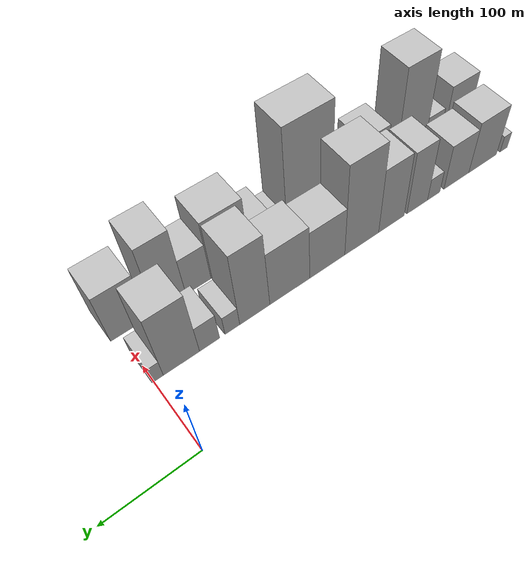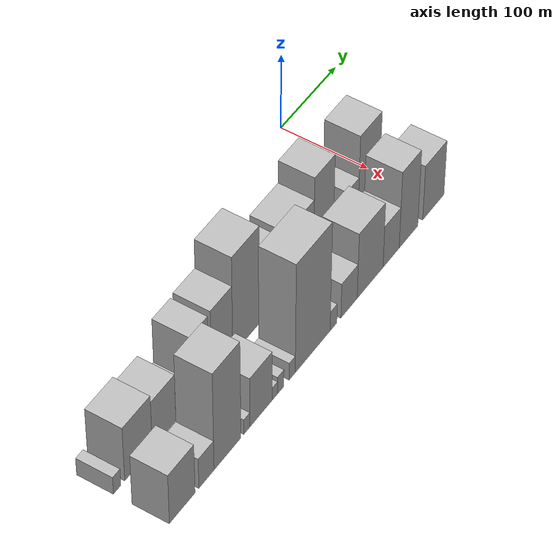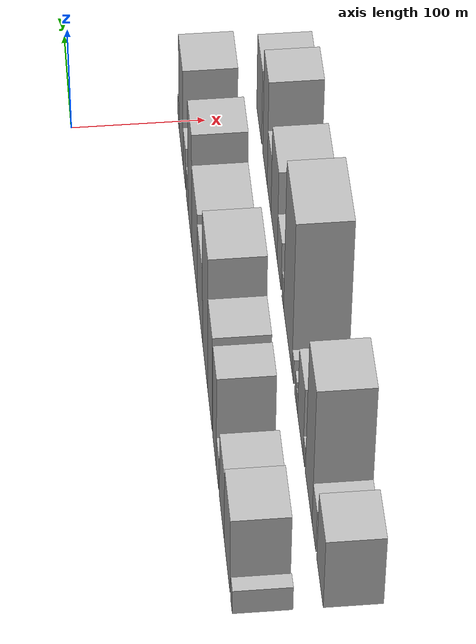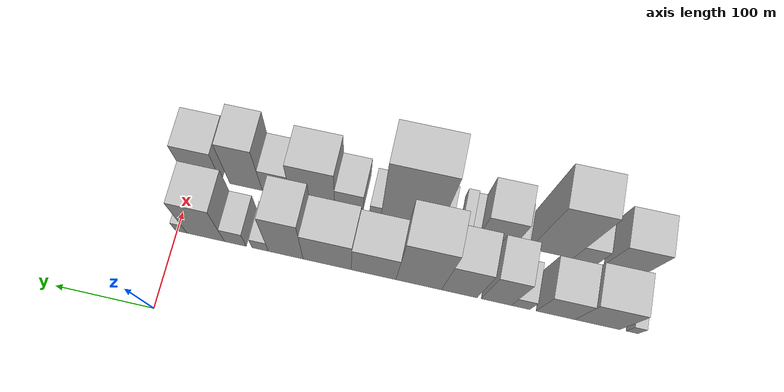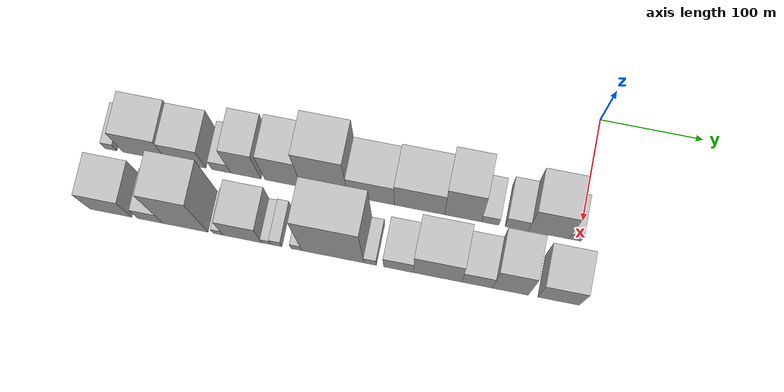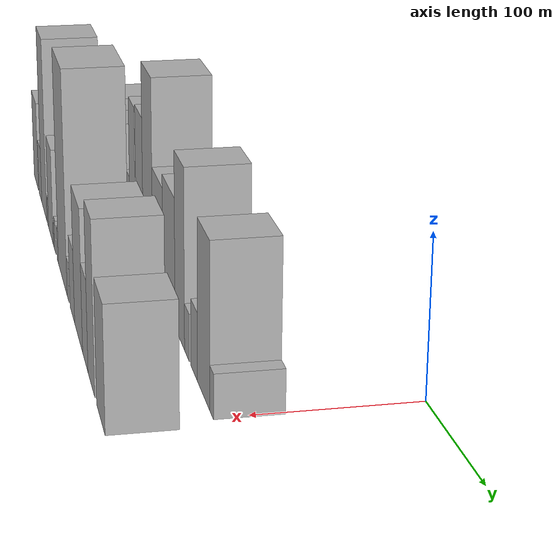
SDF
<sdf version="1.6">
 <world name="default">
  <model name="building_1">
   <static>1</static>
   <pose>100.0000 -454.2006 0 0.000000 0.000000 0.000000</pose>
   <link name="link">
    <pose>0 0 12.00 0 0 0</pose>
    <collision name="collision"><geometry><box><size>40.0000 11.5988 24.0000</size></box></geometry></collision>
    <visual name="visual">
     <cast_shadows>0</cast_shadows>
     <geometry><box><size>40.0000 11.5988 24.0000</size></box></geometry>
     <material>
      <script>
       <uri>model://HANNAS_wall/materials/scripts</uri>
       <uri>model://HANNAS_wall/materials/textures</uri>
       <name>vrc/HANNAS_wall</name>
      </script>
     </material>
    </visual>
   </link>
  </model>
  <model name="building_2">
   <static>1</static>
   <pose>100.0000 -420.6430 0 0.000000 0.000000 0.000000</pose>
   <link name="link">
    <pose>0 0 37.50 0 0 0</pose>
    <collision name="collision"><geometry><box><size>40.0000 43.5163 75.0000</size></box></geometry></collision>
    <visual name="visual">
     <cast_shadows>0</cast_shadows>
     <geometry><box><size>40.0000 43.5163 75.0000</size></box></geometry>
     <material>
      <script>
       <uri>model://HANNAS_wall/materials/scripts</uri>
       <uri>model://HANNAS_wall/materials/textures</uri>
       <name>vrc/HANNAS_wall</name>
      </script>
     </material>
    </visual>
   </link>
  </model>
  <model name="building_3">
   <static>1</static>
   <pose>100.0000 -380.0215 0 0.000000 0.000000 0.000000</pose>
   <link name="link">
    <pose>0 0 33.00 0 0 0</pose>
    <collision name="collision"><geometry><box><size>40.0000 37.7266 66.0000</size></box></geometry></collision>
    <visual name="visual">
     <cast_shadows>0</cast_shadows>
     <geometry><box><size>40.0000 37.7266 66.0000</size></box></geometry>
     <material>
      <script>
       <uri>model://HANNAS_wall/materials/scripts</uri>
       <uri>model://HANNAS_wall/materials/textures</uri>
       <name>vrc/HANNAS_wall</name>
      </script>
     </material>
    </visual>
   </link>
  </model>
  <model name="building_4">
   <static>1</static>
   <pose>100.0000 -346.0598 0 0.000000 0.000000 0.000000</pose>
   <link name="link">
    <pose>0 0 16.50 0 0 0</pose>
    <collision name="collision"><geometry><box><size>40.0000 18.1968 33.0000</size></box></geometry></collision>
    <visual name="visual">
     <cast_shadows>0</cast_shadows>
     <geometry><box><size>40.0000 18.1968 33.0000</size></box></geometry>
     <material>
      <script>
       <uri>model://HANNAS_wall/materials/scripts</uri>
       <uri>model://HANNAS_wall/materials/textures</uri>
       <name>vrc/HANNAS_wall</name>
      </script>
     </material>
    </visual>
   </link>
  </model>
  <model name="building_5">
   <static>1</static>
   <pose>100.0000 -322.1338 0 0.000000 0.000000 0.000000</pose>
   <link name="link">
    <pose>0 0 46.50 0 0 0</pose>
    <collision name="collision"><geometry><box><size>40.0000 29.6552 93.0000</size></box></geometry></collision>
    <visual name="visual">
     <cast_shadows>0</cast_shadows>
     <geometry><box><size>40.0000 29.6552 93.0000</size></box></geometry>
     <material>
      <script>
       <uri>model://HANNAS_wall/materials/scripts</uri>
       <uri>model://HANNAS_wall/materials/textures</uri>
       <name>vrc/HANNAS_wall</name>
      </script>
     </material>
    </visual>
   </link>
  </model>
  <model name="building_6">
   <static>1</static>
   <pose>100.0000 -285.5968 0 0.000000 0.000000 0.000000</pose>
   <link name="link">
    <pose>0 0 48.00 0 0 0</pose>
    <collision name="collision"><geometry><box><size>40.0000 35.4189 96.0000</size></box></geometry></collision>
    <visual name="visual">
     <cast_shadows>0</cast_shadows>
     <geometry><box><size>40.0000 35.4189 96.0000</size></box></geometry>
     <material>
      <script>
       <uri>model://HANNAS_wall/materials/scripts</uri>
       <uri>model://HANNAS_wall/materials/textures</uri>
       <name>vrc/HANNAS_wall</name>
      </script>
     </material>
    </visual>
   </link>
  </model>
  <model name="building_7">
   <static>1</static>
   <pose>100.0000 -245.2105 0 0.000000 0.000000 0.000000</pose>
   <link name="link">
    <pose>0 0 67.50 0 0 0</pose>
    <collision name="collision"><geometry><box><size>40.0000 45.3537 135.0000</size></box></geometry></collision>
    <visual name="visual">
     <cast_shadows>0</cast_shadows>
     <geometry><box><size>40.0000 45.3537 135.0000</size></box></geometry>
     <material>
      <script>
       <uri>model://HANNAS_wall/materials/scripts</uri>
       <uri>model://HANNAS_wall/materials/textures</uri>
       <name>vrc/HANNAS_wall</name>
      </script>
     </material>
    </visual>
   </link>
  </model>
  <model name="building_8">
   <static>1</static>
   <pose>100.0000 -200.1541 0 0.000000 0.000000 0.000000</pose>
   <link name="link">
    <pose>0 0 37.50 0 0 0</pose>
    <collision name="collision"><geometry><box><size>40.0000 44.7592 75.0000</size></box></geometry></collision>
    <visual name="visual">
     <cast_shadows>0</cast_shadows>
     <geometry><box><size>40.0000 44.7592 75.0000</size></box></geometry>
     <material>
      <script>
       <uri>model://HANNAS_wall/materials/scripts</uri>
       <uri>model://HANNAS_wall/materials/textures</uri>
       <name>vrc/HANNAS_wall</name>
      </script>
     </material>
    </visual>
   </link>
  </model>
  <model name="building_9">
   <static>1</static>
   <pose>100.0000 -153.4599 0 0.000000 0.000000 0.000000</pose>
   <link name="link">
    <pose>0 0 42.00 0 0 0</pose>
    <collision name="collision"><geometry><box><size>40.0000 48.6293 84.0000</size></box></geometry></collision>
    <visual name="visual">
     <cast_shadows>0</cast_shadows>
     <geometry><box><size>40.0000 48.6293 84.0000</size></box></geometry>
     <material>
      <script>
       <uri>model://HANNAS_wall/materials/scripts</uri>
       <uri>model://HANNAS_wall/materials/textures</uri>
       <name>vrc/HANNAS_wall</name>
      </script>
     </material>
    </visual>
   </link>
  </model>
  <model name="building_10">
   <static>1</static>
   <pose>100.0000 -111.5275 0 0.000000 0.000000 0.000000</pose>
   <link name="link">
    <pose>0 0 57.00 0 0 0</pose>
    <collision name="collision"><geometry><box><size>40.0000 35.2354 114.0000</size></box></geometry></collision>
    <visual name="visual">
     <cast_shadows>0</cast_shadows>
     <geometry><box><size>40.0000 35.2354 114.0000</size></box></geometry>
     <material>
      <script>
       <uri>model://HANNAS_wall/materials/scripts</uri>
       <uri>model://HANNAS_wall/materials/textures</uri>
       <name>vrc/HANNAS_wall</name>
      </script>
     </material>
    </visual>
   </link>
  </model>
  <model name="building_11">
   <static>1</static>
   <pose>100.0000 -85.5345 0 0.000000 0.000000 0.000000</pose>
   <link name="link">
    <pose>0 0 15.00 0 0 0</pose>
    <collision name="collision"><geometry><box><size>40.0000 16.7506 30.0000</size></box></geometry></collision>
    <visual name="visual">
     <cast_shadows>0</cast_shadows>
     <geometry><box><size>40.0000 16.7506 30.0000</size></box></geometry>
     <material>
      <script>
       <uri>model://HANNAS_wall/materials/scripts</uri>
       <uri>model://HANNAS_wall/materials/textures</uri>
       <name>vrc/HANNAS_wall</name>
      </script>
     </material>
    </visual>
   </link>
  </model>
  <model name="building_12">
   <static>1</static>
   <pose>100.0000 -60.0471 0 0.000000 0.000000 0.000000</pose>
   <link name="link">
    <pose>0 0 21.00 0 0 0</pose>
    <collision name="collision"><geometry><box><size>40.0000 22.2241 42.0000</size></box></geometry></collision>
    <visual name="visual">
     <cast_shadows>0</cast_shadows>
     <geometry><box><size>40.0000 22.2241 42.0000</size></box></geometry>
     <material>
      <script>
       <uri>model://HANNAS_wall/materials/scripts</uri>
       <uri>model://HANNAS_wall/materials/textures</uri>
       <name>vrc/HANNAS_wall</name>
      </script>
     </material>
    </visual>
   </link>
  </model>
  <model name="building_13">
   <static>1</static>
   <pose>100.0000 -29.5227 0 0.000000 0.000000 0.000000</pose>
   <link name="link">
    <pose>0 0 49.50 0 0 0</pose>
    <collision name="collision"><geometry><box><size>40.0000 38.8247 99.0000</size></box></geometry></collision>
    <visual name="visual">
     <cast_shadows>0</cast_shadows>
     <geometry><box><size>40.0000 38.8247 99.0000</size></box></geometry>
     <material>
      <script>
       <uri>model://HANNAS_wall/materials/scripts</uri>
       <uri>model://HANNAS_wall/materials/textures</uri>
       <name>vrc/HANNAS_wall</name>
      </script>
     </material>
    </visual>
   </link>
  </model>
  <model name="building_14">
   <static>1</static>
   <pose>100.0000 -4.1853 0 0.000000 0.000000 0.000000</pose>
   <link name="link">
    <pose>0 0 13.50 0 0 0</pose>
    <collision name="collision"><geometry><box><size>40.0000 11.8502 27.0000</size></box></geometry></collision>
    <visual name="visual">
     <cast_shadows>0</cast_shadows>
     <geometry><box><size>40.0000 11.8502 27.0000</size></box></geometry>
     <material>
      <script>
       <uri>model://HANNAS_wall/materials/scripts</uri>
       <uri>model://HANNAS_wall/materials/textures</uri>
       <name>vrc/HANNAS_wall</name>
      </script>
     </material>
    </visual>
   </link>
  </model>
  <model name="building_26">
   <static>1</static>
   <pose>160.0000 -439.7260 0 0.000000 0.000000 0.000000</pose>
   <link name="link">
    <pose>0 0 34.50 0 0 0</pose>
    <collision name="collision"><geometry><box><size>40.0000 40.5480 69.0000</size></box></geometry></collision>
    <visual name="visual">
     <cast_shadows>0</cast_shadows>
     <geometry><box><size>40.0000 40.5480 69.0000</size></box></geometry>
     <material>
      <script>
       <uri>model://HANNAS_wall/materials/scripts</uri>
       <uri>model://HANNAS_wall/materials/textures</uri>
       <name>vrc/HANNAS_wall</name>
      </script>
     </material>
    </visual>
   </link>
  </model>
  <model name="building_27">
   <static>1</static>
   <pose>160.0000 -401.2304 0 0.000000 0.000000 0.000000</pose>
   <link name="link">
    <pose>0 0 21.00 0 0 0</pose>
    <collision name="collision"><geometry><box><size>40.0000 24.4432 42.0000</size></box></geometry></collision>
    <visual name="visual">
     <cast_shadows>0</cast_shadows>
     <geometry><box><size>40.0000 24.4432 42.0000</size></box></geometry>
     <material>
      <script>
       <uri>model://HANNAS_wall/materials/scripts</uri>
       <uri>model://HANNAS_wall/materials/textures</uri>
       <name>vrc/HANNAS_wall</name>
      </script>
     </material>
    </visual>
   </link>
  </model>
  <model name="building_28">
   <static>1</static>
   <pose>160.0000 -367.2054 0 0.000000 0.000000 0.000000</pose>
   <link name="link">
    <pose>0 0 67.50 0 0 0</pose>
    <collision name="collision"><geometry><box><size>40.0000 43.6069 135.0000</size></box></geometry></collision>
    <visual name="visual">
     <cast_shadows>0</cast_shadows>
     <geometry><box><size>40.0000 43.6069 135.0000</size></box></geometry>
     <material>
      <script>
       <uri>model://HANNAS_wall/materials/scripts</uri>
       <uri>model://HANNAS_wall/materials/textures</uri>
       <name>vrc/HANNAS_wall</name>
      </script>
     </material>
    </visual>
   </link>
  </model>
  <model name="building_29">
   <static>1</static>
   <pose>160.0000 -335.4916 0 0.000000 0.000000 0.000000</pose>
   <link name="link">
    <pose>0 0 10.50 0 0 0</pose>
    <collision name="collision"><geometry><box><size>40.0000 9.8207 21.0000</size></box></geometry></collision>
    <visual name="visual">
     <cast_shadows>0</cast_shadows>
     <geometry><box><size>40.0000 9.8207 21.0000</size></box></geometry>
     <material>
      <script>
       <uri>model://HANNAS_wall/materials/scripts</uri>
       <uri>model://HANNAS_wall/materials/textures</uri>
       <name>vrc/HANNAS_wall</name>
      </script>
     </material>
    </visual>
   </link>
  </model>
  <model name="building_30">
   <static>1</static>
   <pose>160.0000 -311.9870 0 0.000000 0.000000 0.000000</pose>
   <link name="link">
    <pose>0 0 34.50 0 0 0</pose>
    <collision name="collision"><geometry><box><size>40.0000 37.1885 69.0000</size></box></geometry></collision>
    <visual name="visual">
     <cast_shadows>0</cast_shadows>
     <geometry><box><size>40.0000 37.1885 69.0000</size></box></geometry>
     <material>
      <script>
       <uri>model://HANNAS_wall/materials/scripts</uri>
       <uri>model://HANNAS_wall/materials/textures</uri>
       <name>vrc/HANNAS_wall</name>
      </script>
     </material>
    </visual>
   </link>
  </model>
  <model name="building_31">
   <static>1</static>
   <pose>160.0000 -289.0456 0 0.000000 0.000000 0.000000</pose>
   <link name="link">
    <pose>0 0 9.00 0 0 0</pose>
    <collision name="collision"><geometry><box><size>40.0000 8.6942 18.0000</size></box></geometry></collision>
    <visual name="visual">
     <cast_shadows>0</cast_shadows>
     <geometry><box><size>40.0000 8.6942 18.0000</size></box></geometry>
     <material>
      <script>
       <uri>model://HANNAS_wall/materials/scripts</uri>
       <uri>model://HANNAS_wall/materials/textures</uri>
       <name>vrc/HANNAS_wall</name>
      </script>
     </material>
    </visual>
   </link>
  </model>
  <model name="building_32">
   <static>1</static>
   <pose>160.0000 -279.2992 0 0.000000 0.000000 0.000000</pose>
   <link name="link">
    <pose>0 0 12.00 0 0 0</pose>
    <collision name="collision"><geometry><box><size>40.0000 10.7986 24.0000</size></box></geometry></collision>
    <visual name="visual">
     <cast_shadows>0</cast_shadows>
     <geometry><box><size>40.0000 10.7986 24.0000</size></box></geometry>
     <material>
      <script>
       <uri>model://HANNAS_wall/materials/scripts</uri>
       <uri>model://HANNAS_wall/materials/textures</uri>
       <name>vrc/HANNAS_wall</name>
      </script>
     </material>
    </visual>
   </link>
  </model>
  <model name="building_33">
   <static>1</static>
   <pose>160.0000 -259.7788 0 0.000000 0.000000 0.000000</pose>
   <link name="link">
    <pose>0 0 12.00 0 0 0</pose>
    <collision name="collision"><geometry><box><size>40.0000 10.2421 24.0000</size></box></geometry></collision>
    <visual name="visual">
     <cast_shadows>0</cast_shadows>
     <geometry><box><size>40.0000 10.2421 24.0000</size></box></geometry>
     <material>
      <script>
       <uri>model://HANNAS_wall/materials/scripts</uri>
       <uri>model://HANNAS_wall/materials/textures</uri>
       <name>vrc/HANNAS_wall</name>
      </script>
     </material>
    </visual>
   </link>
  </model>
  <model name="building_34">
   <static>1</static>
   <pose>160.0000 -224.7416 0 0.000000 0.000000 0.000000</pose>
   <link name="link">
    <pose>0 0 75.00 0 0 0</pose>
    <collision name="collision"><geometry><box><size>40.0000 59.8323 150.0000</size></box></geometry></collision>
    <visual name="visual">
     <cast_shadows>0</cast_shadows>
     <geometry><box><size>40.0000 59.8323 150.0000</size></box></geometry>
     <material>
      <script>
       <uri>model://HANNAS_wall/materials/scripts</uri>
       <uri>model://HANNAS_wall/materials/textures</uri>
       <name>vrc/HANNAS_wall</name>
      </script>
     </material>
    </visual>
   </link>
  </model>
  <model name="building_35">
   <static>1</static>
   <pose>160.0000 -188.9271 0 0.000000 0.000000 0.000000</pose>
   <link name="link">
    <pose>0 0 13.50 0 0 0</pose>
    <collision name="collision"><geometry><box><size>40.0000 11.7967 27.0000</size></box></geometry></collision>
    <visual name="visual">
     <cast_shadows>0</cast_shadows>
     <geometry><box><size>40.0000 11.7967 27.0000</size></box></geometry>
     <material>
      <script>
       <uri>model://HANNAS_wall/materials/scripts</uri>
       <uri>model://HANNAS_wall/materials/textures</uri>
       <name>vrc/HANNAS_wall</name>
      </script>
     </material>
    </visual>
   </link>
  </model>
  <model name="building_36">
   <static>1</static>
   <pose>160.0000 -161.6458 0 0.000000 0.000000 0.000000</pose>
   <link name="link">
    <pose>0 0 24.00 0 0 0</pose>
    <collision name="collision"><geometry><box><size>40.0000 28.7657 48.0000</size></box></geometry></collision>
    <visual name="visual">
     <cast_shadows>0</cast_shadows>
     <geometry><box><size>40.0000 28.7657 48.0000</size></box></geometry>
     <material>
      <script>
       <uri>model://HANNAS_wall/materials/scripts</uri>
       <uri>model://HANNAS_wall/materials/textures</uri>
       <name>vrc/HANNAS_wall</name>
      </script>
     </material>
    </visual>
   </link>
  </model>
  <model name="building_37">
   <static>1</static>
   <pose>160.0000 -124.2231 0 0.000000 0.000000 0.000000</pose>
   <link name="link">
    <pose>0 0 45.00 0 0 0</pose>
    <collision name="collision"><geometry><box><size>40.0000 46.0799 90.0000</size></box></geometry></collision>
    <visual name="visual">
     <cast_shadows>0</cast_shadows>
     <geometry><box><size>40.0000 46.0799 90.0000</size></box></geometry>
     <material>
      <script>
       <uri>model://HANNAS_wall/materials/scripts</uri>
       <uri>model://HANNAS_wall/materials/textures</uri>
       <name>vrc/HANNAS_wall</name>
      </script>
     </material>
    </visual>
   </link>
  </model>
  <model name="building_38">
   <static>1</static>
   <pose>160.0000 -86.6168 0 0.000000 0.000000 0.000000</pose>
   <link name="link">
    <pose>0 0 28.50 0 0 0</pose>
    <collision name="collision"><geometry><box><size>40.0000 29.1327 57.0000</size></box></geometry></collision>
    <visual name="visual">
     <cast_shadows>0</cast_shadows>
     <geometry><box><size>40.0000 29.1327 57.0000</size></box></geometry>
     <material>
      <script>
       <uri>model://HANNAS_wall/materials/scripts</uri>
       <uri>model://HANNAS_wall/materials/textures</uri>
       <name>vrc/HANNAS_wall</name>
      </script>
     </material>
    </visual>
   </link>
  </model>
  <model name="building_39">
   <static>1</static>
   <pose>160.0000 -55.0306 0 0.000000 0.000000 0.000000</pose>
   <link name="link">
    <pose>0 0 52.50 0 0 0</pose>
    <collision name="collision"><geometry><box><size>40.0000 34.0397 105.0000</size></box></geometry></collision>
    <visual name="visual">
     <cast_shadows>0</cast_shadows>
     <geometry><box><size>40.0000 34.0397 105.0000</size></box></geometry>
     <material>
      <script>
       <uri>model://HANNAS_wall/materials/scripts</uri>
       <uri>model://HANNAS_wall/materials/textures</uri>
       <name>vrc/HANNAS_wall</name>
      </script>
     </material>
    </visual>
   </link>
  </model>
  <model name="building_40">
   <static>1</static>
   <pose>160.0000 -9.2905 0 0.000000 0.000000 0.000000</pose>
   <link name="link">
    <pose>0 0 37.50 0 0 0</pose>
    <collision name="collision"><geometry><box><size>40.0000 39.4404 75.0000</size></box></geometry></collision>
    <visual name="visual">
     <cast_shadows>0</cast_shadows>
     <geometry><box><size>40.0000 39.4404 75.0000</size></box></geometry>
     <material>
      <script>
       <uri>model://HANNAS_wall/materials/scripts</uri>
       <uri>model://HANNAS_wall/materials/textures</uri>
       <name>vrc/HANNAS_wall</name>
      </script>
     </material>
    </visual>
   </link>
  </model>
 </world>
</sdf>
